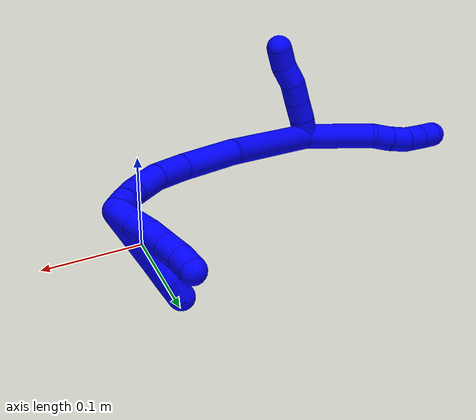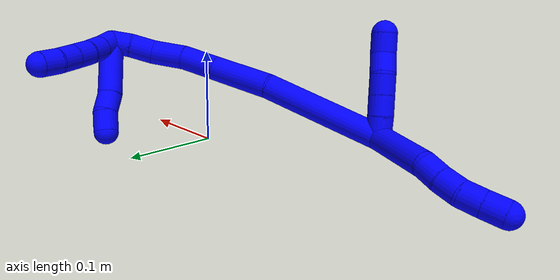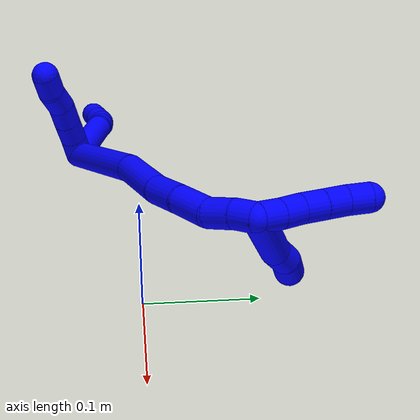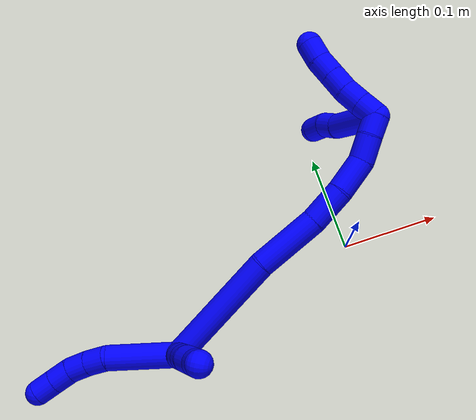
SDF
<sdf version="1.7">
 <world name="default">
  <plugin name="TubeGeneratorPlugin" filename="libtube_generator_plugin.so"/>
  <model name="photoneo_s_sensor">
   <static>1</static>
   <pose>0 0 2 1.57079 1.57079 3.14159</pose>
   <link name="link">
    <inertial><mass>0.1</mass></inertial>
    <sensor name="sensor" type="depth">
     <update_rate>30</update_rate>
     <camera>
      <horizontal_fov>1.22</horizontal_fov>
      <image><width>1920</width><height>1200</height><format>B8G8R8</format></image>
      <clip><near>0.1</near><far>4</far></clip>
      <depth_camera><output>points</output></depth_camera>
     </camera>
     <plugin name="camera_plugin" filename="libgazebo_ros_depth_camera.so">
      <baseline>0.2</baseline>
      <alwaysOn>1</alwaysOn>
      <updateRate>0.0</updateRate>
      <cameraName>camera_ir</cameraName>
      <imageTopicName>/camera/color/image_raw</imageTopicName>
      <cameraInfoTopicName>/camera/color/camera_info</cameraInfoTopicName>
      <depthImageTopicName>/camera/depth/image_raw</depthImageTopicName>
      <depthImageCameraInfoTopicName>/camera/depth/camera_info</depthImageCameraInfoTopicName>
      <pointCloudTopicName>/camera/depth/points</pointCloudTopicName>
      <frameName>fr_optical</frameName>
      <pointCloudCutoff>0.1</pointCloudCutoff>
      <pointCloudCutoffMax>2.0</pointCloudCutoffMax>
      <distortionK1>0</distortionK1>
      <distortionK2>0</distortionK2>
      <distortionK3>0</distortionK3>
      <distortionT1>0</distortionT1>
      <distortionT2>0</distortionT2>
      <CxPrime>0</CxPrime>
      <Cx>0</Cx>
      <Cy>0</Cy>
      <focalLength>0</focalLength>
      <hackBaseline>0</hackBaseline>
     </plugin>
    </sensor>
   </link>
  </model>
  <gravity>0 0 -9.8</gravity>
  <magnetic_field>6e-06 2.3e-05 -4.2e-05</magnetic_field>
  <atmosphere type="adiabatic"/>
  <physics name="default_physics" default="0" type="ode">
   <max_step_size>0.003</max_step_size>
   <real_time_factor>1</real_time_factor>
   <real_time_update_rate>1000</real_time_update_rate>
   <max_contacts>10000</max_contacts>
   <ode>
    <solver>
     <type>quick</type>
     <iters>100</iters>
     <sor>1.3</sor>
     <use_dynamic_moi_rescaling>0</use_dynamic_moi_rescaling>
    </solver>
    <constraints>
     <contact_max_correcting_vel>0</contact_max_correcting_vel>
     <contact_surface_layer>0.001</contact_surface_layer>
     <cfm>0</cfm>
     <erp>0.2</erp>
    </constraints>
   </ode>
  </physics>
  <scene><ambient>0.4 0.4 0.4 1</ambient><background>0.7 0.7 0.7 1</background><shadows>0</shadows></scene>
  <audio><device>default</device></audio>
  <spherical_coordinates>
   <surface_model>EARTH_WGS84</surface_model>
   <latitude_deg>0</latitude_deg>
   <longitude_deg>0</longitude_deg>
   <elevation>0</elevation>
   <heading_deg>0</heading_deg>
  </spherical_coordinates>
  <model name="bin">
   <static>1</static>
   <link name="bottom">
    <collision name="collision-bottom">
     <pose>0 0 -0.01 0 -0 0</pose>
     <geometry><box><size>0.8 0.6 0.02</size></box></geometry>
     <surface>
      <friction><ode><mu>100</mu><mu2>100</mu2></ode></friction>
      <contact><collide_bitmask>65535</collide_bitmask></contact>
     </surface>
    </collision>
   </link>
   <link name="west_wall">
    <collision name="collision-west_wall">
     <pose>-0.41 0 0.1 0 -0 0</pose>
     <geometry><box><size>0.02 0.6 0.2</size></box></geometry>
     <surface>
      <friction><ode><mu>100</mu><mu2>100</mu2></ode></friction>
      <contact><collide_bitmask>65535</collide_bitmask></contact>
     </surface>
    </collision>
   </link>
   <link name="east_wall">
    <collision name="collision-east_wall">
     <pose>0.41 0 0.1 0 -0 0</pose>
     <geometry><box><size>0.02 0.6 0.2</size></box></geometry>
     <surface>
      <friction><ode><mu>100</mu><mu2>100</mu2></ode></friction>
      <contact><collide_bitmask>65535</collide_bitmask></contact>
     </surface>
    </collision>
   </link>
   <link name="south_wall">
    <collision name="collision-south_wall">
     <pose>0 -0.31 0.1 0 -0 0</pose>
     <geometry><box><size>0.8 0.02 0.2</size></box></geometry>
     <surface>
      <friction><ode><mu>100</mu><mu2>100</mu2></ode></friction>
      <contact><collide_bitmask>65535</collide_bitmask></contact>
     </surface>
    </collision>
   </link>
   <link name="north_wall">
    <collision name="collision-north_wall">
     <pose>0 0.31 0.1 0 -0 0</pose>
     <geometry><box><size>0.8 0.02 0.2</size></box></geometry>
     <surface>
      <friction><ode><mu>100</mu><mu2>100</mu2></ode></friction>
      <contact><collide_bitmask>65535</collide_bitmask></contact>
     </surface>
    </collision>
   </link>
  </model>
  <model name="1">
   <static>0</static>
   <link name="1">
    <collision name="collision-cylinder-e_1_2_8">
     <pose>-0.007032 -0.007741 0.032948 0.230746 -0.204859 -0.023823</pose>
     <geometry><cylinder><radius>0.0125</radius><length>0.069137</length></cylinder></geometry>
     <surface>
      <friction><ode><mu>1.16</mu><mu2>1.16</mu2><slip1>0</slip1><slip2>0</slip2></ode></friction>
      <contact><ode><kp>1e+06</kp><kd>1</kd><max_vel>0</max_vel><min_depth>0.001</min_depth></ode></contact>
     </surface>
    </collision>
    <visual name="visual-cylinder-e_1_2_8">
     <pose>-0.007032 -0.007741 0.032948 0.230746 -0.204859 -0.023823</pose>
     <geometry><cylinder><radius>0.0125</radius><length>0.069137</length></cylinder></geometry>
     <material><ambient>0 0 1 1</ambient></material>
    </visual>
    <collision name="collision-cylinder-e_2_8_9">
     <pose>-0.018654 -0.015341 0.075086 -0.015291 -0.463217 0.003606</pose>
     <geometry><cylinder><radius>0.0125</radius><length>0.020545</length></cylinder></geometry>
     <surface>
      <friction><ode><mu>1.16</mu><mu2>1.16</mu2><slip1>0</slip1><slip2>0</slip2></ode></friction>
      <contact><ode><kp>1e+06</kp><kd>1</kd><max_vel>0</max_vel><min_depth>0.001</min_depth></ode></contact>
     </surface>
    </collision>
    <visual name="visual-cylinder-e_2_8_9">
     <pose>-0.018654 -0.015341 0.075086 -0.015291 -0.463217 0.003606</pose>
     <geometry><cylinder><radius>0.0125</radius><length>0.020545</length></cylinder></geometry>
     <material><ambient>0 0 1 1</ambient></material>
    </visual>
    <collision name="collision-cylinder-e_3_9_10">
     <pose>-0.028552 -0.015852 0.092867 0.075685 -0.552026 -0.021447</pose>
     <geometry><cylinder><radius>0.0125</radius><length>0.020241</length></cylinder></geometry>
     <surface>
      <friction><ode><mu>1.16</mu><mu2>1.16</mu2><slip1>0</slip1><slip2>0</slip2></ode></friction>
      <contact><ode><kp>1e+06</kp><kd>1</kd><max_vel>0</max_vel><min_depth>0.001</min_depth></ode></contact>
     </surface>
    </collision>
    <visual name="visual-cylinder-e_3_9_10">
     <pose>-0.028552 -0.015852 0.092867 0.075685 -0.552026 -0.021447</pose>
     <geometry><cylinder><radius>0.0125</radius><length>0.020241</length></cylinder></geometry>
     <material><ambient>0 0 1 1</ambient></material>
    </visual>
    <collision name="collision-cylinder-e_4_10_11">
     <pose>-0.040726 -0.01831 0.108551 0.249435 -0.753669 -0.099147</pose>
     <geometry><cylinder><radius>0.0125</radius><length>0.020071</length></cylinder></geometry>
     <surface>
      <friction><ode><mu>1.16</mu><mu2>1.16</mu2><slip1>0</slip1><slip2>0</slip2></ode></friction>
      <contact><ode><kp>1e+06</kp><kd>1</kd><max_vel>0</max_vel><min_depth>0.001</min_depth></ode></contact>
     </surface>
    </collision>
    <visual name="visual-cylinder-e_4_10_11">
     <pose>-0.040726 -0.01831 0.108551 0.249435 -0.753669 -0.099147</pose>
     <geometry><cylinder><radius>0.0125</radius><length>0.020071</length></cylinder></geometry>
     <material><ambient>0 0 1 1</ambient></material>
    </visual>
    <collision name="collision-cylinder-e_5_11_6">
     <pose>-0.054471 -0.022193 0.122603 0.289901 -0.758038 -0.116145</pose>
     <geometry><cylinder><radius>0.0125</radius><length>0.020007</length></cylinder></geometry>
     <surface>
      <friction><ode><mu>1.16</mu><mu2>1.16</mu2><slip1>0</slip1><slip2>0</slip2></ode></friction>
      <contact><ode><kp>1e+06</kp><kd>1</kd><max_vel>0</max_vel><min_depth>0.001</min_depth></ode></contact>
     </surface>
    </collision>
    <visual name="visual-cylinder-e_5_11_6">
     <pose>-0.054471 -0.022193 0.122603 0.289901 -0.758038 -0.116145</pose>
     <geometry><cylinder><radius>0.0125</radius><length>0.020007</length></cylinder></geometry>
     <material><ambient>0 0 1 1</ambient></material>
    </visual>
    <collision name="collision-cylinder-e_1_2_12">
     <pose>0.002373 -0.008939 -0.003803 1.97302 0.239545 0.360027</pose>
     <geometry><cylinder><radius>0.0125</radius><length>0.02</length></cylinder></geometry>
     <surface>
      <friction><ode><mu>1.16</mu><mu2>1.16</mu2><slip1>0</slip1><slip2>0</slip2></ode></friction>
      <contact><ode><kp>1e+06</kp><kd>1</kd><max_vel>0</max_vel><min_depth>0.001</min_depth></ode></contact>
     </surface>
    </collision>
    <visual name="visual-cylinder-e_1_2_12">
     <pose>0.002373 -0.008939 -0.003803 1.97302 0.239545 0.360027</pose>
     <geometry><cylinder><radius>0.0125</radius><length>0.02</length></cylinder></geometry>
     <material><ambient>0 0 1 1</ambient></material>
    </visual>
    <collision name="collision-cylinder-e_2_12_13">
     <pose>0.00728 -0.026404 -0.012176 2.06284 0.256226 0.423944</pose>
     <geometry><cylinder><radius>0.0125</radius><length>0.02</length></cylinder></geometry>
     <surface>
      <friction><ode><mu>1.16</mu><mu2>1.16</mu2><slip1>0</slip1><slip2>0</slip2></ode></friction>
      <contact><ode><kp>1e+06</kp><kd>1</kd><max_vel>0</max_vel><min_depth>0.001</min_depth></ode></contact>
     </surface>
    </collision>
    <visual name="visual-cylinder-e_2_12_13">
     <pose>0.00728 -0.026404 -0.012176 2.06284 0.256226 0.423944</pose>
     <geometry><cylinder><radius>0.0125</radius><length>0.02</length></cylinder></geometry>
     <material><ambient>0 0 1 1</ambient></material>
    </visual>
    <collision name="collision-cylinder-e_3_13_14">
     <pose>0.01239 -0.043541 -0.02113 2.04172 0.260585 0.421167</pose>
     <geometry><cylinder><radius>0.0125</radius><length>0.02</length></cylinder></geometry>
     <surface>
      <friction><ode><mu>1.16</mu><mu2>1.16</mu2><slip1>0</slip1><slip2>0</slip2></ode></friction>
      <contact><ode><kp>1e+06</kp><kd>1</kd><max_vel>0</max_vel><min_depth>0.001</min_depth></ode></contact>
     </surface>
    </collision>
    <visual name="visual-cylinder-e_3_13_14">
     <pose>0.01239 -0.043541 -0.02113 2.04172 0.260585 0.421167</pose>
     <geometry><cylinder><radius>0.0125</radius><length>0.02</length></cylinder></geometry>
     <material><ambient>0 0 1 1</ambient></material>
    </visual>
    <collision name="collision-cylinder-e_4_14_15">
     <pose>0.016643 -0.059581 -0.031994 2.28804 0.168373 0.366976</pose>
     <geometry><cylinder><radius>0.0125</radius><length>0.02</length></cylinder></geometry>
     <surface>
      <friction><ode><mu>1.16</mu><mu2>1.16</mu2><slip1>0</slip1><slip2>0</slip2></ode></friction>
      <contact><ode><kp>1e+06</kp><kd>1</kd><max_vel>0</max_vel><min_depth>0.001</min_depth></ode></contact>
     </surface>
    </collision>
    <visual name="visual-cylinder-e_4_14_15">
     <pose>0.016643 -0.059581 -0.031994 2.28804 0.168373 0.366976</pose>
     <geometry><cylinder><radius>0.0125</radius><length>0.02</length></cylinder></geometry>
     <material><ambient>0 0 1 1</ambient></material>
    </visual>
    <collision name="collision-cylinder-e_5_15_5">
     <pose>0.020924 -0.075633 -0.042817 2.0374 0.263657 0.424046</pose>
     <geometry><cylinder><radius>0.0125</radius><length>0.02</length></cylinder></geometry>
     <surface>
      <friction><ode><mu>1.16</mu><mu2>1.16</mu2><slip1>0</slip1><slip2>0</slip2></ode></friction>
      <contact><ode><kp>1e+06</kp><kd>1</kd><max_vel>0</max_vel><min_depth>0.001</min_depth></ode></contact>
     </surface>
    </collision>
    <visual name="visual-cylinder-e_5_15_5">
     <pose>0.020924 -0.075633 -0.042817 2.0374 0.263657 0.424046</pose>
     <geometry><cylinder><radius>0.0125</radius><length>0.02</length></cylinder></geometry>
     <material><ambient>0 0 1 1</ambient></material>
    </visual>
    <collision name="collision-cylinder-e_1_2_16">
     <pose>0.049612 0.006389 -0.032607 -2.94811 0.980676 -2.78193</pose>
     <geometry><cylinder><radius>0.0125</radius><length>0.119422</length></cylinder></geometry>
     <surface>
      <friction><ode><mu>1.16</mu><mu2>1.16</mu2><slip1>0</slip1><slip2>0</slip2></ode></friction>
      <contact><ode><kp>1e+06</kp><kd>1</kd><max_vel>0</max_vel><min_depth>0.001</min_depth></ode></contact>
     </surface>
    </collision>
    <visual name="visual-cylinder-e_1_2_16">
     <pose>0.049612 0.006389 -0.032607 -2.94811 0.980676 -2.78193</pose>
     <geometry><cylinder><radius>0.0125</radius><length>0.119422</length></cylinder></geometry>
     <material><ambient>0 0 1 1</ambient></material>
    </visual>
    <collision name="collision-cylinder-e_2_16_17">
     <pose>0.12284 0.020443 -0.085089 -2.77352 0.836857 -2.34874</pose>
     <geometry><cylinder><radius>0.0125</radius><length>0.063607</length></cylinder></geometry>
     <surface>
      <friction><ode><mu>1.16</mu><mu2>1.16</mu2><slip1>0</slip1><slip2>0</slip2></ode></friction>
      <contact><ode><kp>1e+06</kp><kd>1</kd><max_vel>0</max_vel><min_depth>0.001</min_depth></ode></contact>
     </surface>
    </collision>
    <visual name="visual-cylinder-e_2_16_17">
     <pose>0.12284 0.020443 -0.085089 -2.77352 0.836857 -2.34874</pose>
     <geometry><cylinder><radius>0.0125</radius><length>0.063607</length></cylinder></geometry>
     <material><ambient>0 0 1 1</ambient></material>
    </visual>
    <collision name="collision-cylinder-e_3_17_18">
     <pose>0.161917 0.031802 -0.114447 -2.77007 0.988634 -2.47058</pose>
     <geometry><cylinder><radius>0.0125</radius><length>0.037019</length></cylinder></geometry>
     <surface>
      <friction><ode><mu>1.16</mu><mu2>1.16</mu2><slip1>0</slip1><slip2>0</slip2></ode></friction>
      <contact><ode><kp>1e+06</kp><kd>1</kd><max_vel>0</max_vel><min_depth>0.001</min_depth></ode></contact>
     </surface>
    </collision>
    <visual name="visual-cylinder-e_3_17_18">
     <pose>0.161917 0.031802 -0.114447 -2.77007 0.988634 -2.47058</pose>
     <geometry><cylinder><radius>0.0125</radius><length>0.037019</length></cylinder></geometry>
     <material><ambient>0 0 1 1</ambient></material>
    </visual>
    <collision name="collision-cylinder-e_4_18_19">
     <pose>0.192388 0.040967 -0.130804 -2.46939 1.04131 -2.04722</pose>
     <geometry><cylinder><radius>0.0125</radius><length>0.034785</length></cylinder></geometry>
     <surface>
      <friction><ode><mu>1.16</mu><mu2>1.16</mu2><slip1>0</slip1><slip2>0</slip2></ode></friction>
      <contact><ode><kp>1e+06</kp><kd>1</kd><max_vel>0</max_vel><min_depth>0.001</min_depth></ode></contact>
     </surface>
    </collision>
    <visual name="visual-cylinder-e_4_18_19">
     <pose>0.192388 0.040967 -0.130804 -2.46939 1.04131 -2.04722</pose>
     <geometry><cylinder><radius>0.0125</radius><length>0.034785</length></cylinder></geometry>
     <material><ambient>0 0 1 1</ambient></material>
    </visual>
    <collision name="collision-cylinder-e_5_19_20">
     <pose>0.219712 0.047889 -0.13945 -2.45545 1.3868 -2.32972</pose>
     <geometry><cylinder><radius>0.0125</radius><length>0.025048</length></cylinder></geometry>
     <surface>
      <friction><ode><mu>1.16</mu><mu2>1.16</mu2><slip1>0</slip1><slip2>0</slip2></ode></friction>
      <contact><ode><kp>1e+06</kp><kd>1</kd><max_vel>0</max_vel><min_depth>0.001</min_depth></ode></contact>
     </surface>
    </collision>
    <visual name="visual-cylinder-e_5_19_20">
     <pose>0.219712 0.047889 -0.13945 -2.45545 1.3868 -2.32972</pose>
     <geometry><cylinder><radius>0.0125</radius><length>0.025048</length></cylinder></geometry>
     <material><ambient>0 0 1 1</ambient></material>
    </visual>
    <collision name="collision-cylinder-e_6_20_1">
     <pose>0.241668 0.051756 -0.142757 -2.13666 1.28244 -1.87241</pose>
     <geometry><cylinder><radius>0.0125</radius><length>0.020118</length></cylinder></geometry>
     <surface>
      <friction><ode><mu>1.16</mu><mu2>1.16</mu2><slip1>0</slip1><slip2>0</slip2></ode></friction>
      <contact><ode><kp>1e+06</kp><kd>1</kd><max_vel>0</max_vel><min_depth>0.001</min_depth></ode></contact>
     </surface>
    </collision>
    <visual name="visual-cylinder-e_6_20_1">
     <pose>0.241668 0.051756 -0.142757 -2.13666 1.28244 -1.87241</pose>
     <geometry><cylinder><radius>0.0125</radius><length>0.020118</length></cylinder></geometry>
     <material><ambient>0 0 1 1</ambient></material>
    </visual>
    <collision name="collision-cylinder-e_1_1_21">
     <pose>0.244411 0.073834 -0.123499 -0.757532 -0.236626 0.094544</pose>
     <geometry><cylinder><radius>0.0125</radius><length>0.058876</length></cylinder></geometry>
     <surface>
      <friction><ode><mu>1.16</mu><mu2>1.16</mu2><slip1>0</slip1><slip2>0</slip2></ode></friction>
      <contact><ode><kp>1e+06</kp><kd>1</kd><max_vel>0</max_vel><min_depth>0.001</min_depth></ode></contact>
     </surface>
    </collision>
    <visual name="visual-cylinder-e_1_1_21">
     <pose>0.244411 0.073834 -0.123499 -0.757532 -0.236626 0.094544</pose>
     <geometry><cylinder><radius>0.0125</radius><length>0.058876</length></cylinder></geometry>
     <material><ambient>0 0 1 1</ambient></material>
    </visual>
    <collision name="collision-cylinder-e_2_21_22">
     <pose>0.237322 0.100108 -0.095158 -0.719131 -0.018684 0.007023</pose>
     <geometry><cylinder><radius>0.0125</radius><length>0.020069</length></cylinder></geometry>
     <surface>
      <friction><ode><mu>1.16</mu><mu2>1.16</mu2><slip1>0</slip1><slip2>0</slip2></ode></friction>
      <contact><ode><kp>1e+06</kp><kd>1</kd><max_vel>0</max_vel><min_depth>0.001</min_depth></ode></contact>
     </surface>
    </collision>
    <visual name="visual-cylinder-e_2_21_22">
     <pose>0.237322 0.100108 -0.095158 -0.719131 -0.018684 0.007023</pose>
     <geometry><cylinder><radius>0.0125</radius><length>0.020069</length></cylinder></geometry>
     <material><ambient>0 0 1 1</ambient></material>
    </visual>
    <collision name="collision-cylinder-e_3_22_4">
     <pose>0.233857 0.113798 -0.080543 -0.786449 -0.316668 0.132279</pose>
     <geometry><cylinder><radius>0.0125</radius><length>0.021054</length></cylinder></geometry>
     <surface>
      <friction><ode><mu>1.16</mu><mu2>1.16</mu2><slip1>0</slip1><slip2>0</slip2></ode></friction>
      <contact><ode><kp>1e+06</kp><kd>1</kd><max_vel>0</max_vel><min_depth>0.001</min_depth></ode></contact>
     </surface>
    </collision>
    <visual name="visual-cylinder-e_3_22_4">
     <pose>0.233857 0.113798 -0.080543 -0.786449 -0.316668 0.132279</pose>
     <geometry><cylinder><radius>0.0125</radius><length>0.021054</length></cylinder></geometry>
     <material><ambient>0 0 1 1</ambient></material>
    </visual>
    <collision name="collision-cylinder-e_1_1_23">
     <pose>0.256236 0.056014 -0.135785 -0.21344 0.514878 -0.056394</pose>
     <geometry><cylinder><radius>0.0125</radius><length>0.02</length></cylinder></geometry>
     <surface>
      <friction><ode><mu>1.16</mu><mu2>1.16</mu2><slip1>0</slip1><slip2>0</slip2></ode></friction>
      <contact><ode><kp>1e+06</kp><kd>1</kd><max_vel>0</max_vel><min_depth>0.001</min_depth></ode></contact>
     </surface>
    </collision>
    <visual name="visual-cylinder-e_1_1_23">
     <pose>0.256236 0.056014 -0.135785 -0.21344 0.514878 -0.056394</pose>
     <geometry><cylinder><radius>0.0125</radius><length>0.02</length></cylinder></geometry>
     <material><ambient>0 0 1 1</ambient></material>
    </visual>
    <collision name="collision-cylinder-e_2_23_24">
     <pose>0.266347 0.059003 -0.118806 -0.134388 0.545342 -0.037632</pose>
     <geometry><cylinder><radius>0.0125</radius><length>0.02</length></cylinder></geometry>
     <surface>
      <friction><ode><mu>1.16</mu><mu2>1.16</mu2><slip1>0</slip1><slip2>0</slip2></ode></friction>
      <contact><ode><kp>1e+06</kp><kd>1</kd><max_vel>0</max_vel><min_depth>0.001</min_depth></ode></contact>
     </surface>
    </collision>
    <visual name="visual-cylinder-e_2_23_24">
     <pose>0.266347 0.059003 -0.118806 -0.134388 0.545342 -0.037632</pose>
     <geometry><cylinder><radius>0.0125</radius><length>0.02</length></cylinder></geometry>
     <material><ambient>0 0 1 1</ambient></material>
    </visual>
    <collision name="collision-cylinder-e_3_24_25">
     <pose>0.277842 0.061671 -0.102724 -0.197544 0.682473 -0.070354</pose>
     <geometry><cylinder><radius>0.0125</radius><length>0.02</length></cylinder></geometry>
     <surface>
      <friction><ode><mu>1.16</mu><mu2>1.16</mu2><slip1>0</slip1><slip2>0</slip2></ode></friction>
      <contact><ode><kp>1e+06</kp><kd>1</kd><max_vel>0</max_vel><min_depth>0.001</min_depth></ode></contact>
     </surface>
    </collision>
    <visual name="visual-cylinder-e_3_24_25">
     <pose>0.277842 0.061671 -0.102724 -0.197544 0.682473 -0.070354</pose>
     <geometry><cylinder><radius>0.0125</radius><length>0.02</length></cylinder></geometry>
     <material><ambient>0 0 1 1</ambient></material>
    </visual>
    <collision name="collision-cylinder-e_4_25_26">
     <pose>0.290443 0.064636 -0.087479 -0.186593 0.680814 -0.066258</pose>
     <geometry><cylinder><radius>0.0125</radius><length>0.02</length></cylinder></geometry>
     <surface>
      <friction><ode><mu>1.16</mu><mu2>1.16</mu2><slip1>0</slip1><slip2>0</slip2></ode></friction>
      <contact><ode><kp>1e+06</kp><kd>1</kd><max_vel>0</max_vel><min_depth>0.001</min_depth></ode></contact>
     </surface>
    </collision>
    <visual name="visual-cylinder-e_4_25_26">
     <pose>0.290443 0.064636 -0.087479 -0.186593 0.680814 -0.066258</pose>
     <geometry><cylinder><radius>0.0125</radius><length>0.02</length></cylinder></geometry>
     <material><ambient>0 0 1 1</ambient></material>
    </visual>
    <collision name="collision-cylinder-e_5_26_3">
     <pose>0.304144 0.06788 -0.073372 -0.271646 0.834087 -0.120946</pose>
     <geometry><cylinder><radius>0.0125</radius><length>0.02</length></cylinder></geometry>
     <surface>
      <friction><ode><mu>1.16</mu><mu2>1.16</mu2><slip1>0</slip1><slip2>0</slip2></ode></friction>
      <contact><ode><kp>1e+06</kp><kd>1</kd><max_vel>0</max_vel><min_depth>0.001</min_depth></ode></contact>
     </surface>
    </collision>
    <visual name="visual-cylinder-e_5_26_3">
     <pose>0.304144 0.06788 -0.073372 -0.271646 0.834087 -0.120946</pose>
     <geometry><cylinder><radius>0.0125</radius><length>0.02</length></cylinder></geometry>
     <material><ambient>0 0 1 1</ambient></material>
    </visual>
    <collision name="collision-sphere-3">
     <pose>0.311551 0.069683 -0.066899 0 -0 0</pose>
     <geometry><sphere><radius>0.0125</radius></sphere></geometry>
     <surface>
      <friction><ode><mu>1.16</mu><mu2>1.16</mu2><slip1>0</slip1><slip2>0</slip2></ode></friction>
      <contact><ode><kp>1e+06</kp><kd>1</kd><max_vel>0</max_vel><min_depth>0.001</min_depth></ode></contact>
     </surface>
    </collision>
    <visual name="visual-sphere-3">
     <pose>0.311551 0.069683 -0.066899 0 -0 0</pose>
     <geometry><sphere><radius>0.0125</radius></sphere></geometry>
     <material><ambient>0 0 1 1</ambient></material>
    </visual>
    <collision name="collision-sphere-26">
     <pose>0.296737 0.066078 -0.079844 0 -0 0</pose>
     <geometry><sphere><radius>0.0125</radius></sphere></geometry>
     <surface>
      <friction><ode><mu>1.16</mu><mu2>1.16</mu2><slip1>0</slip1><slip2>0</slip2></ode></friction>
      <contact><ode><kp>1e+06</kp><kd>1</kd><max_vel>0</max_vel><min_depth>0.001</min_depth></ode></contact>
     </surface>
    </collision>
    <visual name="visual-sphere-26">
     <pose>0.296737 0.066078 -0.079844 0 -0 0</pose>
     <geometry><sphere><radius>0.0125</radius></sphere></geometry>
     <material><ambient>0 0 1 1</ambient></material>
    </visual>
    <collision name="collision-sphere-25">
     <pose>0.284149 0.063194 -0.095115 0 -0 0</pose>
     <geometry><sphere><radius>0.0125</radius></sphere></geometry>
     <surface>
      <friction><ode><mu>1.16</mu><mu2>1.16</mu2><slip1>0</slip1><slip2>0</slip2></ode></friction>
      <contact><ode><kp>1e+06</kp><kd>1</kd><max_vel>0</max_vel><min_depth>0.001</min_depth></ode></contact>
     </surface>
    </collision>
    <visual name="visual-sphere-25">
     <pose>0.284149 0.063194 -0.095115 0 -0 0</pose>
     <geometry><sphere><radius>0.0125</radius></sphere></geometry>
     <material><ambient>0 0 1 1</ambient></material>
    </visual>
    <collision name="collision-sphere-24">
     <pose>0.271534 0.060148 -0.110334 0 -0 0</pose>
     <geometry><sphere><radius>0.0125</radius></sphere></geometry>
     <surface>
      <friction><ode><mu>1.16</mu><mu2>1.16</mu2><slip1>0</slip1><slip2>0</slip2></ode></friction>
      <contact><ode><kp>1e+06</kp><kd>1</kd><max_vel>0</max_vel><min_depth>0.001</min_depth></ode></contact>
     </surface>
    </collision>
    <visual name="visual-sphere-24">
     <pose>0.271534 0.060148 -0.110334 0 -0 0</pose>
     <geometry><sphere><radius>0.0125</radius></sphere></geometry>
     <material><ambient>0 0 1 1</ambient></material>
    </visual>
    <collision name="collision-sphere-23">
     <pose>0.26116 0.057857 -0.127279 0 -0 0</pose>
     <geometry><sphere><radius>0.0125</radius></sphere></geometry>
     <surface>
      <friction><ode><mu>1.16</mu><mu2>1.16</mu2><slip1>0</slip1><slip2>0</slip2></ode></friction>
      <contact><ode><kp>1e+06</kp><kd>1</kd><max_vel>0</max_vel><min_depth>0.001</min_depth></ode></contact>
     </surface>
    </collision>
    <visual name="visual-sphere-23">
     <pose>0.26116 0.057857 -0.127279 0 -0 0</pose>
     <geometry><sphere><radius>0.0125</radius></sphere></geometry>
     <material><ambient>0 0 1 1</ambient></material>
    </visual>
    <collision name="collision-sphere-4">
     <pose>0.230578 0.120879 -0.073477 0 -0 0</pose>
     <geometry><sphere><radius>0.0125</radius></sphere></geometry>
     <surface>
      <friction><ode><mu>1.16</mu><mu2>1.16</mu2><slip1>0</slip1><slip2>0</slip2></ode></friction>
      <contact><ode><kp>1e+06</kp><kd>1</kd><max_vel>0</max_vel><min_depth>0.001</min_depth></ode></contact>
     </surface>
    </collision>
    <visual name="visual-sphere-4">
     <pose>0.230578 0.120879 -0.073477 0 -0 0</pose>
     <geometry><sphere><radius>0.0125</radius></sphere></geometry>
     <material><ambient>0 0 1 1</ambient></material>
    </visual>
    <collision name="collision-sphere-22">
     <pose>0.237135 0.106717 -0.08761 0 -0 0</pose>
     <geometry><sphere><radius>0.0125</radius></sphere></geometry>
     <surface>
      <friction><ode><mu>1.16</mu><mu2>1.16</mu2><slip1>0</slip1><slip2>0</slip2></ode></friction>
      <contact><ode><kp>1e+06</kp><kd>1</kd><max_vel>0</max_vel><min_depth>0.001</min_depth></ode></contact>
     </surface>
    </collision>
    <visual name="visual-sphere-22">
     <pose>0.237135 0.106717 -0.08761 0 -0 0</pose>
     <geometry><sphere><radius>0.0125</radius></sphere></geometry>
     <material><ambient>0 0 1 1</ambient></material>
    </visual>
    <collision name="collision-sphere-21">
     <pose>0.23751 0.093499 -0.102707 0 -0 0</pose>
     <geometry><sphere><radius>0.0125</radius></sphere></geometry>
     <surface>
      <friction><ode><mu>1.16</mu><mu2>1.16</mu2><slip1>0</slip1><slip2>0</slip2></ode></friction>
      <contact><ode><kp>1e+06</kp><kd>1</kd><max_vel>0</max_vel><min_depth>0.001</min_depth></ode></contact>
     </surface>
    </collision>
    <visual name="visual-sphere-21">
     <pose>0.23751 0.093499 -0.102707 0 -0 0</pose>
     <geometry><sphere><radius>0.0125</radius></sphere></geometry>
     <material><ambient>0 0 1 1</ambient></material>
    </visual>
    <collision name="collision-sphere-1">
     <pose>0.251312 0.05417 -0.144291 0 -0 0</pose>
     <geometry><sphere><radius>0.0125</radius></sphere></geometry>
     <surface>
      <friction><ode><mu>1.16</mu><mu2>1.16</mu2><slip1>0</slip1><slip2>0</slip2></ode></friction>
      <contact><ode><kp>1e+06</kp><kd>1</kd><max_vel>0</max_vel><min_depth>0.001</min_depth></ode></contact>
     </surface>
    </collision>
    <visual name="visual-sphere-1">
     <pose>0.251312 0.05417 -0.144291 0 -0 0</pose>
     <geometry><sphere><radius>0.0125</radius></sphere></geometry>
     <material><ambient>0 0 1 1</ambient></material>
    </visual>
    <collision name="collision-sphere-6">
     <pose>-0.061349 -0.024269 0.129564 0 -0 0</pose>
     <geometry><sphere><radius>0.0125</radius></sphere></geometry>
     <surface>
      <friction><ode><mu>1.16</mu><mu2>1.16</mu2><slip1>0</slip1><slip2>0</slip2></ode></friction>
      <contact><ode><kp>1e+06</kp><kd>1</kd><max_vel>0</max_vel><min_depth>0.001</min_depth></ode></contact>
     </surface>
    </collision>
    <visual name="visual-sphere-6">
     <pose>-0.061349 -0.024269 0.129564 0 -0 0</pose>
     <geometry><sphere><radius>0.0125</radius></sphere></geometry>
     <material><ambient>0 0 1 1</ambient></material>
    </visual>
    <collision name="collision-sphere-11">
     <pose>-0.047594 -0.020116 0.115642 0 -0 0</pose>
     <geometry><sphere><radius>0.0125</radius></sphere></geometry>
     <surface>
      <friction><ode><mu>1.16</mu><mu2>1.16</mu2><slip1>0</slip1><slip2>0</slip2></ode></friction>
      <contact><ode><kp>1e+06</kp><kd>1</kd><max_vel>0</max_vel><min_depth>0.001</min_depth></ode></contact>
     </surface>
    </collision>
    <visual name="visual-sphere-11">
     <pose>-0.047594 -0.020116 0.115642 0 -0 0</pose>
     <geometry><sphere><radius>0.0125</radius></sphere></geometry>
     <material><ambient>0 0 1 1</ambient></material>
    </visual>
    <collision name="collision-sphere-10">
     <pose>-0.033859 -0.016503 0.101459 0 -0 0</pose>
     <geometry><sphere><radius>0.0125</radius></sphere></geometry>
     <surface>
      <friction><ode><mu>1.16</mu><mu2>1.16</mu2><slip1>0</slip1><slip2>0</slip2></ode></friction>
      <contact><ode><kp>1e+06</kp><kd>1</kd><max_vel>0</max_vel><min_depth>0.001</min_depth></ode></contact>
     </surface>
    </collision>
    <visual name="visual-sphere-10">
     <pose>-0.033859 -0.016503 0.101459 0 -0 0</pose>
     <geometry><sphere><radius>0.0125</radius></sphere></geometry>
     <material><ambient>0 0 1 1</ambient></material>
    </visual>
    <collision name="collision-sphere-9">
     <pose>-0.023244 -0.0152 0.084274 0 -0 0</pose>
     <geometry><sphere><radius>0.0125</radius></sphere></geometry>
     <surface>
      <friction><ode><mu>1.16</mu><mu2>1.16</mu2><slip1>0</slip1><slip2>0</slip2></ode></friction>
      <contact><ode><kp>1e+06</kp><kd>1</kd><max_vel>0</max_vel><min_depth>0.001</min_depth></ode></contact>
     </surface>
    </collision>
    <visual name="visual-sphere-9">
     <pose>-0.023244 -0.0152 0.084274 0 -0 0</pose>
     <geometry><sphere><radius>0.0125</radius></sphere></geometry>
     <material><ambient>0 0 1 1</ambient></material>
    </visual>
    <collision name="collision-sphere-2">
     <geometry><sphere><radius>0.0125</radius></sphere></geometry>
     <surface>
      <friction><ode><mu>1.16</mu><mu2>1.16</mu2><slip1>0</slip1><slip2>0</slip2></ode></friction>
      <contact><ode><kp>1e+06</kp><kd>1</kd><max_vel>0</max_vel><min_depth>0.001</min_depth></ode></contact>
     </surface>
    </collision>
    <visual name="visual-sphere-2">
     <geometry><sphere><radius>0.0125</radius></sphere></geometry>
     <material><ambient>0 0 1 1</ambient></material>
    </visual>
    <collision name="collision-sphere-19">
     <pose>0.207399 0.046437 -0.137678 0 -0 0</pose>
     <geometry><sphere><radius>0.0125</radius></sphere></geometry>
     <surface>
      <friction><ode><mu>1.16</mu><mu2>1.16</mu2><slip1>0</slip1><slip2>0</slip2></ode></friction>
      <contact><ode><kp>1e+06</kp><kd>1</kd><max_vel>0</max_vel><min_depth>0.001</min_depth></ode></contact>
     </surface>
    </collision>
    <visual name="visual-sphere-19">
     <pose>0.207399 0.046437 -0.137678 0 -0 0</pose>
     <geometry><sphere><radius>0.0125</radius></sphere></geometry>
     <material><ambient>0 0 1 1</ambient></material>
    </visual>
    <collision name="collision-sphere-8">
     <pose>-0.014064 -0.015481 0.065897 0 -0 0</pose>
     <geometry><sphere><radius>0.0125</radius></sphere></geometry>
     <surface>
      <friction><ode><mu>1.16</mu><mu2>1.16</mu2><slip1>0</slip1><slip2>0</slip2></ode></friction>
      <contact><ode><kp>1e+06</kp><kd>1</kd><max_vel>0</max_vel><min_depth>0.001</min_depth></ode></contact>
     </surface>
    </collision>
    <visual name="visual-sphere-8">
     <pose>-0.014064 -0.015481 0.065897 0 -0 0</pose>
     <geometry><sphere><radius>0.0125</radius></sphere></geometry>
     <material><ambient>0 0 1 1</ambient></material>
    </visual>
    <collision name="collision-sphere-12">
     <pose>0.004745 -0.017878 -0.007606 0 -0 0</pose>
     <geometry><sphere><radius>0.0125</radius></sphere></geometry>
     <surface>
      <friction><ode><mu>1.16</mu><mu2>1.16</mu2><slip1>0</slip1><slip2>0</slip2></ode></friction>
      <contact><ode><kp>1e+06</kp><kd>1</kd><max_vel>0</max_vel><min_depth>0.001</min_depth></ode></contact>
     </surface>
    </collision>
    <visual name="visual-sphere-12">
     <pose>0.004745 -0.017878 -0.007606 0 -0 0</pose>
     <geometry><sphere><radius>0.0125</radius></sphere></geometry>
     <material><ambient>0 0 1 1</ambient></material>
    </visual>
    <collision name="collision-sphere-13">
     <pose>0.009814 -0.03493 -0.016746 0 -0 0</pose>
     <geometry><sphere><radius>0.0125</radius></sphere></geometry>
     <surface>
      <friction><ode><mu>1.16</mu><mu2>1.16</mu2><slip1>0</slip1><slip2>0</slip2></ode></friction>
      <contact><ode><kp>1e+06</kp><kd>1</kd><max_vel>0</max_vel><min_depth>0.001</min_depth></ode></contact>
     </surface>
    </collision>
    <visual name="visual-sphere-13">
     <pose>0.009814 -0.03493 -0.016746 0 -0 0</pose>
     <geometry><sphere><radius>0.0125</radius></sphere></geometry>
     <material><ambient>0 0 1 1</ambient></material>
    </visual>
    <collision name="collision-sphere-14">
     <pose>0.014967 -0.052152 -0.025513 0 -0 0</pose>
     <geometry><sphere><radius>0.0125</radius></sphere></geometry>
     <surface>
      <friction><ode><mu>1.16</mu><mu2>1.16</mu2><slip1>0</slip1><slip2>0</slip2></ode></friction>
      <contact><ode><kp>1e+06</kp><kd>1</kd><max_vel>0</max_vel><min_depth>0.001</min_depth></ode></contact>
     </surface>
    </collision>
    <visual name="visual-sphere-14">
     <pose>0.014967 -0.052152 -0.025513 0 -0 0</pose>
     <geometry><sphere><radius>0.0125</radius></sphere></geometry>
     <material><ambient>0 0 1 1</ambient></material>
    </visual>
    <collision name="collision-sphere-15">
     <pose>0.018318 -0.067011 -0.038474 0 -0 0</pose>
     <geometry><sphere><radius>0.0125</radius></sphere></geometry>
     <surface>
      <friction><ode><mu>1.16</mu><mu2>1.16</mu2><slip1>0</slip1><slip2>0</slip2></ode></friction>
      <contact><ode><kp>1e+06</kp><kd>1</kd><max_vel>0</max_vel><min_depth>0.001</min_depth></ode></contact>
     </surface>
    </collision>
    <visual name="visual-sphere-15">
     <pose>0.018318 -0.067011 -0.038474 0 -0 0</pose>
     <geometry><sphere><radius>0.0125</radius></sphere></geometry>
     <material><ambient>0 0 1 1</ambient></material>
    </visual>
    <collision name="collision-sphere-5">
     <pose>0.023531 -0.084256 -0.04716 0 -0 0</pose>
     <geometry><sphere><radius>0.0125</radius></sphere></geometry>
     <surface>
      <friction><ode><mu>1.16</mu><mu2>1.16</mu2><slip1>0</slip1><slip2>0</slip2></ode></friction>
      <contact><ode><kp>1e+06</kp><kd>1</kd><max_vel>0</max_vel><min_depth>0.001</min_depth></ode></contact>
     </surface>
    </collision>
    <visual name="visual-sphere-5">
     <pose>0.023531 -0.084256 -0.04716 0 -0 0</pose>
     <geometry><sphere><radius>0.0125</radius></sphere></geometry>
     <material><ambient>0 0 1 1</ambient></material>
    </visual>
    <collision name="collision-sphere-16">
     <pose>0.099225 0.012778 -0.065214 0 -0 0</pose>
     <geometry><sphere><radius>0.0125</radius></sphere></geometry>
     <surface>
      <friction><ode><mu>1.16</mu><mu2>1.16</mu2><slip1>0</slip1><slip2>0</slip2></ode></friction>
      <contact><ode><kp>1e+06</kp><kd>1</kd><max_vel>0</max_vel><min_depth>0.001</min_depth></ode></contact>
     </surface>
    </collision>
    <visual name="visual-sphere-16">
     <pose>0.099225 0.012778 -0.065214 0 -0 0</pose>
     <geometry><sphere><radius>0.0125</radius></sphere></geometry>
     <material><ambient>0 0 1 1</ambient></material>
    </visual>
    <collision name="collision-sphere-17">
     <pose>0.146456 0.028107 -0.104965 0 -0 0</pose>
     <geometry><sphere><radius>0.0125</radius></sphere></geometry>
     <surface>
      <friction><ode><mu>1.16</mu><mu2>1.16</mu2><slip1>0</slip1><slip2>0</slip2></ode></friction>
      <contact><ode><kp>1e+06</kp><kd>1</kd><max_vel>0</max_vel><min_depth>0.001</min_depth></ode></contact>
     </surface>
    </collision>
    <visual name="visual-sphere-17">
     <pose>0.146456 0.028107 -0.104965 0 -0 0</pose>
     <geometry><sphere><radius>0.0125</radius></sphere></geometry>
     <material><ambient>0 0 1 1</ambient></material>
    </visual>
    <collision name="collision-sphere-18">
     <pose>0.177377 0.035497 -0.12393 0 -0 0</pose>
     <geometry><sphere><radius>0.0125</radius></sphere></geometry>
     <surface>
      <friction><ode><mu>1.16</mu><mu2>1.16</mu2><slip1>0</slip1><slip2>0</slip2></ode></friction>
      <contact><ode><kp>1e+06</kp><kd>1</kd><max_vel>0</max_vel><min_depth>0.001</min_depth></ode></contact>
     </surface>
    </collision>
    <visual name="visual-sphere-18">
     <pose>0.177377 0.035497 -0.12393 0 -0 0</pose>
     <geometry><sphere><radius>0.0125</radius></sphere></geometry>
     <material><ambient>0 0 1 1</ambient></material>
    </visual>
    <collision name="collision-sphere-20">
     <pose>0.232024 0.049341 -0.141223 0 -0 0</pose>
     <geometry><sphere><radius>0.0125</radius></sphere></geometry>
     <surface>
      <friction><ode><mu>1.16</mu><mu2>1.16</mu2><slip1>0</slip1><slip2>0</slip2></ode></friction>
      <contact><ode><kp>1e+06</kp><kd>1</kd><max_vel>0</max_vel><min_depth>0.001</min_depth></ode></contact>
     </surface>
    </collision>
    <visual name="visual-sphere-20">
     <pose>0.232024 0.049341 -0.141223 0 -0 0</pose>
     <geometry><sphere><radius>0.0125</radius></sphere></geometry>
     <material><ambient>0 0 1 1</ambient></material>
    </visual>
    <inertial>
     <pose>0.115472 0.020771 -0.050139 0 -0 0</pose>
     <mass>0.75</mass>
     <inertia>
      <ixx>-4.5e-05</ixx>
      <ixy>0</ixy>
      <ixz>0</ixz>
      <iyy>0.000193</iyy>
      <iyz>0</iyz>
      <izz>-0.000164</izz>
     </inertia>
    </inertial>
   </link>
   <pose>-0.197058 -0.055387 0.038999 -1.78791 -0.38895 1.09066</pose>
  </model>
 </world>
</sdf>
